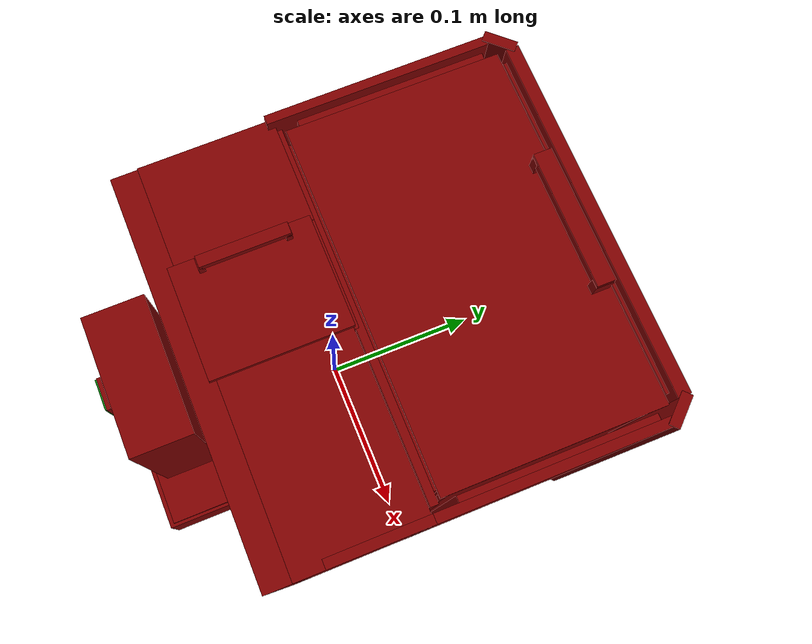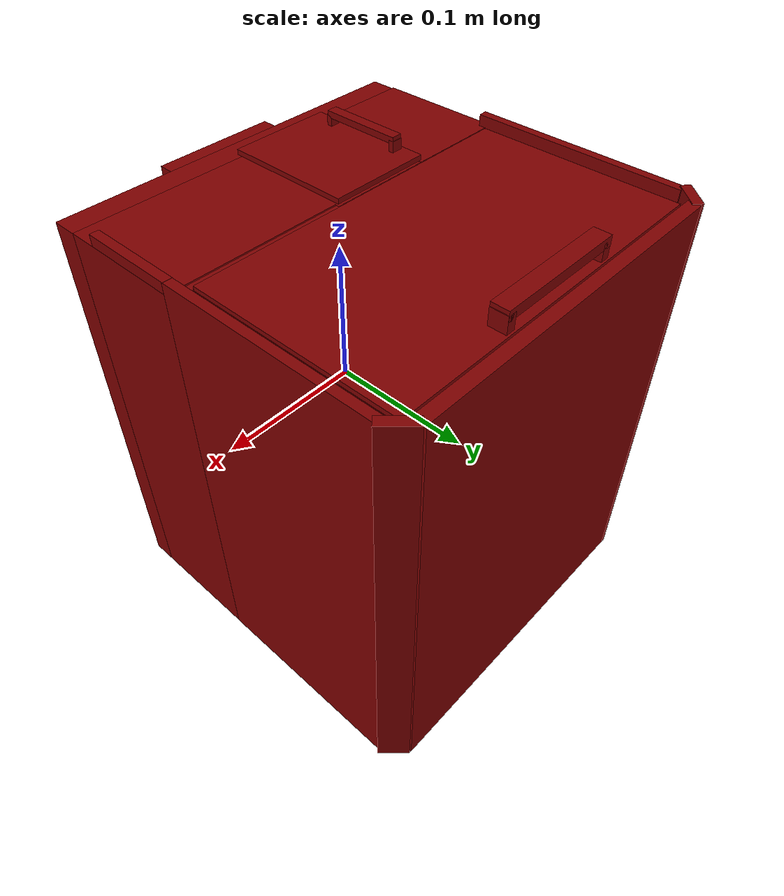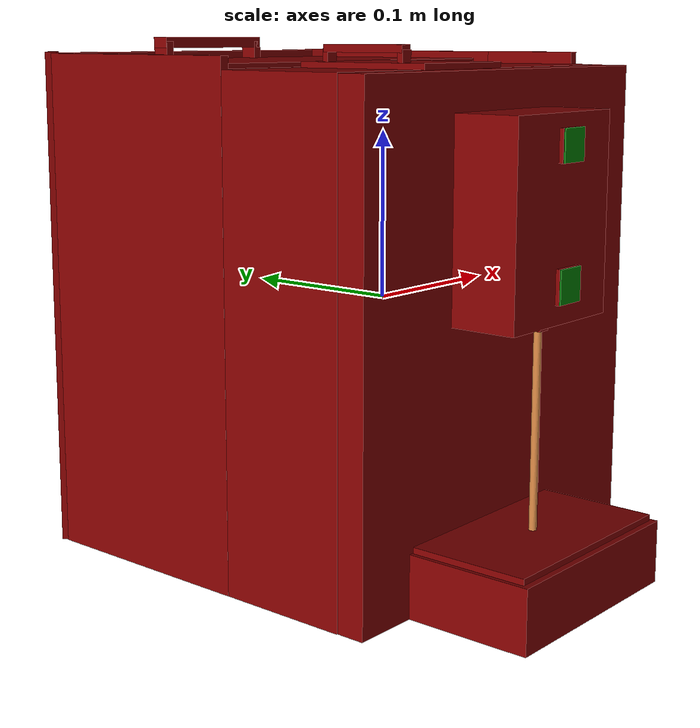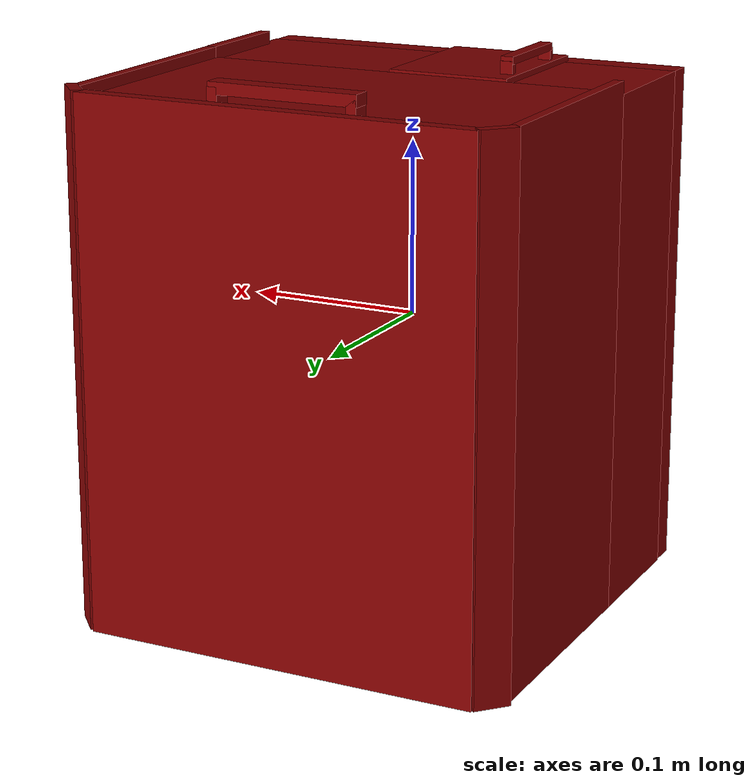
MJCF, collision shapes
<?xml version='1.0' encoding='UTF-8'?>
<mujoco model="model">
  <compiler angle="radian"/>
  <asset>
    <mesh file="visuals/Body001.obj" name="Body001_vis"/>
    <mesh file="visuals/Button001.obj" name="Button001_vis"/>
    <mesh file="visuals/Button002.obj" name="Button002_vis"/>
    <mesh file="visuals/Container001_Clear.obj" name="Container001_Clear_vis"/>
    <mesh file="visuals/Lid001.obj" name="Lid001_vis"/>
    <mesh file="visuals/Lid002.obj" name="Lid002_vis"/>
    <mesh file="visuals/Lid003.obj" name="Lid003_vis"/>
    <texture file="visuals/T_BC001.png" name="Body001_material" type="2d"/>
    <material name="Body001_material" rgba="1 1 1 1.0" texture="Body001_material" shininess="0.4472135901451111" specular="1"/>
    <texture file="visuals/T_BC001.png" name="Button001_material" type="2d"/>
    <material name="Button001_material" rgba="1 1 1 1.0" texture="Button001_material" shininess="0.4472135901451111" specular="0.3103448502657381"/>
    <texture file="visuals/T_BC001.png" name="Button002_material" type="2d"/>
    <material name="Button002_material" rgba="1 1 1 1.0" texture="Button002_material" shininess="0.4472135901451111" specular="0.3103448502657381"/>
    <texture file="visuals/T_BC001.png" name="Container001_Clear_material" type="2d"/>
    <material name="Container001_Clear_material" rgba="1 1 1 0.20000000298023224" texture="Container001_Clear_material" shininess="0.4472135901451111" specular="0.3103448502657381"/>
    <texture file="visuals/T_BC001.png" name="Lid003_material" type="2d"/>
    <material name="Lid003_material" rgba="1 1 1 1.0" texture="Lid003_material" shininess="0.4472135901451111" specular="0.3103448502657381"/>
    <texture file="visuals/T_BC001.png" name="Lid001_material" type="2d"/>
    <material name="Lid001_material" rgba="1 1 1 1.0" texture="Lid001_material" shininess="0.4472135901451111" specular="0.3103448502657381"/>
    <texture file="visuals/T_BC001.png" name="Lid002_material" type="2d"/>
    <material name="Lid002_material" rgba="1 1 1 1.0" texture="Lid002_material" shininess="0.4472135901451111" specular="0.3103448502657381"/>
  </asset>
  <default>
    <default class="visual">
      <geom conaffinity="0" contype="0" group="1" type="mesh"/>
    </default>
    <default class="collision">
      <geom group="0" rgba="0.5 0 0 0.5"/>
    </default>
    <default class="spawn">
      <geom group="0" rgba="1 1 1 0.5" contype="0" conaffinity="0"/>
      <site group="0" rgba="1 1 1 0.5"/>
    </default>
    <default class="region">
      <geom group="1" conaffinity="0" contype="0" rgba="0 1 0 0"/>
    </default>
  </default>
  <worldbody>
    <body>
      <body name="object">
        <geom class="collision" type="box" pos="-0.014772 -0.139558 0.099028" size="0.009566737338900566 0.0003430936485528946 0.009127018041908741" quat="1.0 0.0 0.0 0.0" name="start_button_2" rgba="0.0 0.5 0 0.5"/>
        <geom class="collision" type="box" pos="-0.014976 -0.139558 0.024635" size="0.009787026792764664 0.00034309393959119916 0.009568579494953156" quat="1.0 0.0 0.0 0.0" name="start_button_1" rgba="0.0 0.5 0 0.5"/>
        <site type="cylinder" rgba="0.8 0.5 0.25 1" size="0.0022727642208337784 0.06362088024616241" pos="-0.018993 -0.122674 -0.052510" name="coffee_liquid"/>
        <site rgba="0 0 0 0" size="0.009999999776482582 0.009999999776482582" pos="-0.018463 -0.122435 -0.115658" name="receptacle_place_site"/>
        <geom mesh="Body001_vis" type="mesh" solimp="0.998 0.998 0.001" solref="0.001 1" density="100" friction="0.95 0.3 0.1" class="visual" material="Body001_material"/>
        <geom class="collision" type="box" pos="-0.019246 -0.124466 -0.135544" size="0.06732146441936493 0.03899968042969704 0.018293188884854317" quat="1.0 0.0 0.0 0.0"/>
        <geom class="collision" type="box" pos="-0.015080 -0.088405 0.058940" size="0.02187253162264824 0.005716899409890175 0.024242591112852097" quat="1.0 0.0 0.0 0.0"/>
        <geom class="collision" type="box" pos="-0.016037 -0.115143 0.059456" size="0.04456498473882675 0.01965956762433052 0.056401584297418594" quat="1.0 0.0 0.0 0.0"/>
        <geom class="collision" type="box" pos="-0.019081 -0.122594 0.000689" size="0.0040506357327103615 0.004050625488162041 0.0018362629925832152" quat="0.9999991655349731 8.353775753767342e-17 -0.0012800452532246709 -1.719859116233735e-10"/>
        <geom class="collision" type="box" pos="0.000000 0.160873 -0.004562" size="0.1135784238576889 0.004081658087670803 0.1494361311197281" quat="1.0 0.0 0.0 0.0"/>
        <geom class="collision" type="box" pos="0.066912 -0.031360 -0.008355" size="0.059515390545129776 0.04082353785634041 0.14564304053783417" quat="1.0 0.0 0.0 0.0"/>
        <geom class="collision" type="box" pos="-0.092657 -0.029941 -0.008321" size="0.03392772376537323 0.04232896864414215 0.14567525684833527" quat="1.0 0.0 0.0 0.0"/>
        <geom class="collision" type="box" pos="-0.025146 -0.032160 -0.030372" size="0.035084426403045654 0.041680850088596344 0.12396906316280365" quat="1.0 0.0 0.0 0.0"/>
        <geom class="collision" type="box" pos="0.123537 0.078858 -0.004679" size="0.00298910029232502 0.07035694271326065 0.14931921660900116" quat="1.0 0.0 0.0 0.0"/>
        <geom class="collision" type="box" pos="-0.123852 0.078043 -0.004645" size="0.0028407718054950237 0.07035684585571289 0.1493537873029709" quat="1.0 0.0 0.0 0.0"/>
        <geom class="collision" type="box" pos="-0.000784 0.012814 -0.008476" size="0.11783406883478165 0.0025473209097981453 0.14552198350429535" quat="1.0 0.0 0.0 0.0"/>
        <geom class="collision" type="box" pos="-0.000458 0.157646 0.001667" size="0.10917557030916214 0.0027865187730640173 0.13492411375045776" quat="1.0 0.0 0.0 0.0"/>
        <geom class="collision" type="box" pos="0.118819 0.085890 0.001667" size="0.002393134869635105 0.060327909886837006 0.13492301106452942" quat="1.0 0.0 0.0 0.0"/>
        <geom class="collision" type="box" pos="-0.119067 0.085781 0.001667" size="0.0021842317655682564 0.05994740501046181 0.1349223554134369" quat="1.0 0.0 0.0 0.0"/>
        <geom class="collision" type="box" pos="0.001172 0.016492 0.001667" size="0.10865164548158646 0.002403621096163988 0.13492344319820404" quat="1.0 0.0 0.0 0.0"/>
        <geom class="collision" type="box" pos="0.000247 -0.080547 -0.008498" size="0.12618014216423035 0.008513132110238075 0.14550024271011353" quat="1.0 0.0 0.0 0.0"/>
        <geom class="collision" type="box" pos="-0.023880 0.010203 0.116797" size="0.034659493714571 0.002095126546919346 0.020438943058252335" quat="1.0 0.0 0.0 0.0"/>
        <geom class="collision" type="box" pos="-0.057105 -0.068984 0.115878" size="0.005646150559186935 0.0022303347941488028 0.021153442561626434" quat="0.45477381348609924 0.0 0.0 0.8906069993972778"/>
        <geom class="collision" type="box" pos="-0.056253 0.005317 0.115878" size="0.00564615149050951 0.0022303347941488028 0.021153442561626434" quat="0.9232210516929626 0.0 0.0 0.3842693269252777"/>
        <geom class="collision" type="box" pos="0.005764 0.004549 0.115878" size="0.005646150559186935 0.0022303347941488028 0.021153442561626434" quat="0.421263724565506 0.0 0.0 0.9069381952285767"/>
        <geom class="collision" type="box" pos="0.006085 -0.068300 0.115878" size="0.00564615149050951 0.0022303347941488028 0.021153442561626434" quat="0.4609743058681488 0.0 -0.0 -0.887413501739502"/>
        <geom class="collision" type="box" pos="0.123523 -0.021881 0.141102" size="0.0029837675392627716 0.03134392574429512 0.00370032899081707" quat="1.0 0.0 0.0 0.0"/>
        <geom class="collision" type="box" pos="-0.000256 0.082261 -0.143816" size="0.12068446725606918 0.0746990218758583 0.010356585495173931" quat="1.0 0.0 0.0 0.0"/>
        <geom class="collision" type="box" pos="-0.119860 0.155634 -0.003939" size="0.010297711938619614 0.003267524763941765 0.1494000405073166" quat="0.9157803654670715 0.0 0.0 0.4016794264316559"/>
        <geom class="collision" type="box" pos="0.119726 0.155127 -0.003939" size="0.010297711007297039 0.003267524763941765 0.1494000405073166" quat="0.4010376036167145 0.0 0.0 0.9160615801811218"/>
        <body name="Button001">
          <joint axis="0.0 1.0 0.0" pos="-0.014791 -0.136675 0.098872" limited="true" name="Button001_joint" range="0.0 0.003" type="slide" damping="1" frictionloss="1" armature=".01" stiffness="0.05"/>
          <geom mesh="Button001_vis" type="mesh" solimp="0.998 0.998 0.001" solref="0.001 1" density="100" friction="0.95 0.3 0.1" class="visual" material="Button001_material"/>
          <geom class="collision" type="box" pos="-0.014772 -0.137745 0.099028" size="0.010125797241926193 0.001232804381288588 0.009125852957367897" quat="1.0 0.0 0.0 0.0"/>
        </body>
        <body name="Button002">
          <joint axis="0.0 1.0 0.0" pos="-0.014994 -0.136675 0.024423" limited="true" name="Button002_joint" range="0.0 0.003" type="slide" damping="1" frictionloss="1" armature=".01" stiffness="0.05"/>
          <geom mesh="Button002_vis" type="mesh" solimp="0.998 0.998 0.001" solref="0.001 1" density="100" friction="0.95 0.3 0.1" class="visual" material="Button002_material"/>
          <geom class="collision" type="box" pos="-0.014976 -0.137745 0.024635" size="0.009740876033902168 0.0012328051961958408 0.009751131758093834" quat="1.0 0.0 0.0 0.0"/>
        </body>
        <body name="Container001_Clear">
          <joint axis="0.0 0.0 1.0" pos="-0.000002 0.086909 0.001883" limited="true" name="Container001_Clear_joint" range="0.0 0.3" type="slide" damping="1" frictionloss="1" armature=".01" stiffness="0.05"/>
          <geom mesh="Container001_Clear_vis" type="mesh" solimp="0.998 0.998 0.001" solref="0.001 1" density="100" friction="0.95 0.3 0.1" class="visual" material="Container001_Clear_material"/>
          <geom class="collision" type="box" pos="0.000676 0.087073 -0.128091" size="0.11299455165863037 0.06686714291572571 0.0049138423055410385" quat="1.0 0.0 0.0 0.0"/>
          <geom class="collision" type="box" pos="-0.110032 0.085781 0.001667" size="0.0021842317655682564 0.05994740501046181 0.1349223554134369" quat="1.0 0.0 0.0 0.0"/>
          <geom class="collision" type="box" pos="0.001172 0.023322 0.001667" size="0.10865164548158646 0.002403621096163988 0.13492344319820404" quat="1.0 0.0 0.0 0.0"/>
          <geom class="collision" type="box" pos="-0.000458 0.150708 0.001667" size="0.10917557030916214 0.0027865187730640173 0.13492411375045776" quat="1.0 0.0 0.0 0.0"/>
          <geom class="collision" type="box" pos="0.111499 0.085890 0.001667" size="0.002393134869635105 0.060327909886837006 0.13492301106452942" quat="1.0 0.0 0.0 0.0"/>
          <body name="Lid003">
            <joint axis="1.0 0.0 0.0" pos="-0.000000 0.016257 0.139559" limited="true" name="Lid003_joint" range="0.0 1.5707963267948966" type="hinge" damping="1" frictionloss="1" armature=".01" stiffness="0.05"/>
            <geom mesh="Lid003_vis" type="mesh" solimp="0.998 0.998 0.001" solref="0.001 1" density="100" friction="0.95 0.3 0.1" class="visual" material="Lid003_material"/>
            <geom class="collision" type="box" pos="-0.000256 0.084685 0.138921" size="0.11500949412584305 0.06789226084947586 0.0014188403729349375" quat="1.0 0.0 0.0 0.0"/>
            <geom class="collision" type="box" pos="-0.000256 0.145755 0.150548" size="0.04224296659231186 0.005570374429225922 0.003317641094326973" quat="1.0 0.0 0.0 0.0"/>
            <geom class="collision" type="box" pos="0.039469 0.145755 0.145251" size="0.002841886831447482 0.005570374894887209 0.005942030809819698" quat="1.0 0.0 0.0 0.0"/>
            <geom class="collision" type="box" pos="-0.039378 0.145755 0.145422" size="0.002841886831447482 0.005570374894887209 0.005942030809819698" quat="1.0 0.0 0.0 0.0"/>
          </body>
        </body>
        <body name="Lid001">
          <joint axis="0.0 1.0 0.0" pos="0.007481 -0.033683 0.137521" limited="true" name="Lid001_joint" range="0.0 1.5707963267948966" type="hinge" damping="1" frictionloss="1" armature=".01" stiffness="0.05"/>
          <geom mesh="Lid001_vis" type="mesh" solimp="0.998 0.998 0.001" solref="0.001 1" density="100" friction="0.95 0.3 0.1" class="visual" material="Lid001_material"/>
          <geom class="collision" type="box" pos="-0.025691 -0.032754 0.139019" size="0.03515368327498436 0.04327130690217018 0.0016997222555801272" quat="1.0 0.0 0.0 0.0"/>
          <geom class="collision" type="box" pos="-0.054513 -0.031233 0.148166" size="0.027566784992814064 0.00363509776070714 0.0021650162525475025" quat="0.7071068286895752 0.0 -0.0 -0.7071067690849304"/>
          <geom class="collision" type="box" pos="-0.054513 -0.057641 0.143846" size="0.0018545497441664338 0.00363509776070714 0.0038776316214352846" quat="0.7071068286895752 0.0 -0.0 -0.7071067690849304"/>
          <geom class="collision" type="box" pos="-0.054513 -0.005152 0.143957" size="0.0018545497441664338 0.00363509776070714 0.0038776316214352846" quat="0.7071068286895752 0.0 -0.0 -0.7071067690849304"/>
        </body>
        <body name="Lid002">
          <joint axis="0.0 0.0 1.0" pos="-0.019242 -0.124604 -0.115473" limited="true" name="Lid002_joint" range="0.0 0.1" type="slide" damping="0.2" frictionloss="0.2" armature=".01" stiffness="0.05"/>
          <geom mesh="Lid002_vis" type="mesh" solimp="0.998 0.998 0.001" solref="0.001 1" density="100" friction="0.95 0.3 0.1" class="visual" material="Lid002_material"/>
          <geom class="collision" type="box" pos="-0.019246 -0.124527 -0.115668" size="0.0648120790719986 0.03510352596640587 0.0019619916565716267" quat="1.0 0.0 0.0 0.0"/>
        </body>
        <geom class="region" name="reg_main" type="box" pos="0.0 0.0 0.0" size="0.1265 0.164649 0.15379"/>
      </body>
    </body>
  </worldbody>
  <actuator>
    <motor name="Button001_joint_actuator" joint="Button001_joint" gear="0.5"/>
    <motor name="Button002_joint_actuator" joint="Button002_joint" gear="0.5"/>
    <motor name="Container001_Clear_joint_actuator" joint="Container001_Clear_joint" gear="30"/>
    <motor name="Lid001_joint_actuator" joint="Lid001_joint" gear="10"/>
    <motor name="Lid002_joint_actuator" joint="Lid002_joint" gear="10"/>
    <motor name="Lid003_joint_actuator" joint="Lid003_joint" gear="10"/>
  </actuator>
</mujoco>
